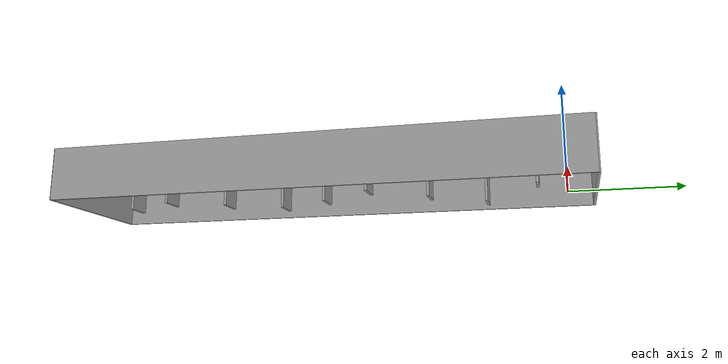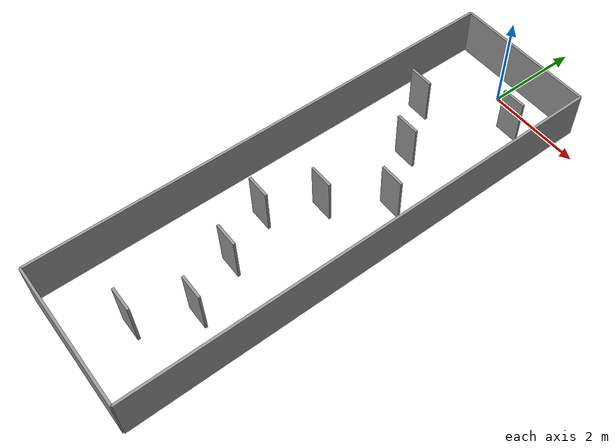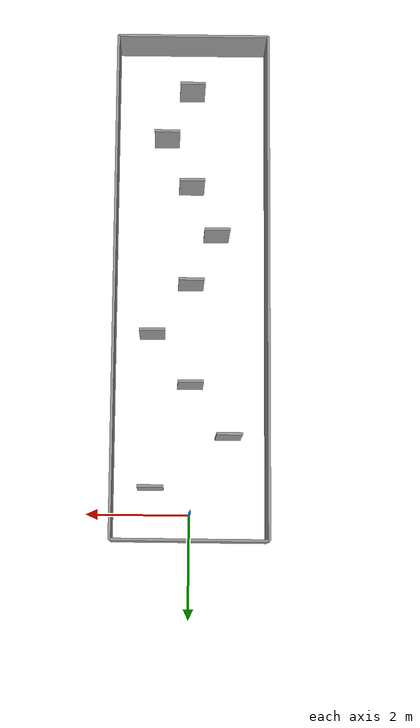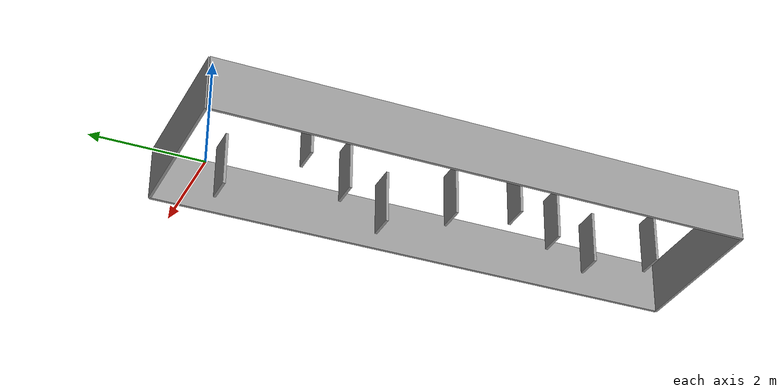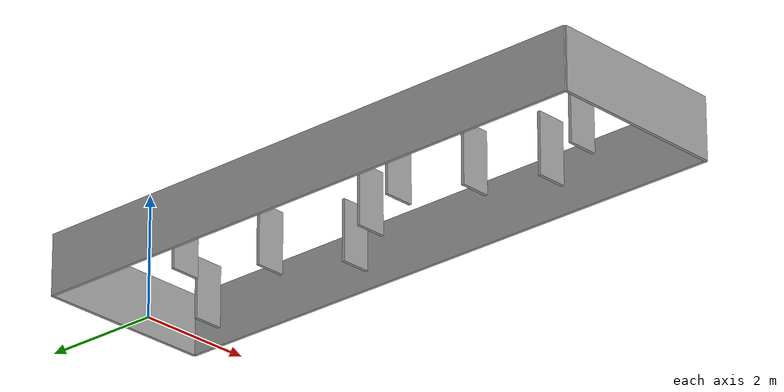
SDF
<?xml version='1.0'?>
<sdf version='1.5'>
  <model name='Circuit_ql_2'>
    <pose frame=''>0 0 0 0 0 0</pose>
    <link name='Wall_1'>
      <collision name='Wall_1_Collision'>
        <geometry>
          <box>
            <size>3 0.05 1</size>
          </box>
        </geometry>
        <pose frame=''>0 0 0.5 0 0 0</pose>
      </collision>
      <visual name='Wall_16_Visual'>
        <pose frame=''>0 0 0.5 0 0 0</pose>
        <geometry>
          <box>
            <size>3 0.05 1</size>
          </box>
        </geometry>
        <material>
          <script>
            <uri>file://media/materials/scripts/gazebo.material</uri>
            <name>Gazebo/Grey</name>
          </script>
          <ambient>1 1 1 1</ambient>
        </material>
      </visual>
      <pose frame=''>0 0.5 0 0 0 0</pose>
    </link>
    <link name='Wall_2'>
      <collision name='Wall_2_Collision'>
        <geometry>
          <box>
            <size>3 0.05 1</size>
          </box>
        </geometry>
        <pose frame=''>0 0 0.5 0 0 0</pose>
      </collision>
      <visual name='Wall_2_Visual'>
        <pose frame=''>0 0 0.5 0 0 0</pose>
        <geometry>
          <box>
            <size>3 0.05 1</size>
          </box>
        </geometry>
        <material>
          <script>
            <uri>file://media/materials/scripts/gazebo.material</uri>
            <name>Gazebo/Grey</name>
          </script>
          <ambient>1 1 1 1</ambient>
        </material>
      </visual>
      <pose frame=''>0 -9.5 0 0 0 0</pose>
    </link>
    <link name='Wall_3'>
      <collision name='Wall_3_Collision'>
        <geometry>
          <box>
            <size>10 0.05 1</size>
          </box>
        </geometry>
        <pose frame=''>0 0 0.5 0 0 0</pose>
      </collision>
      <visual name='Wall_3_Visual'>
        <pose frame=''>0 0 0.5 0 0 0</pose>
        <geometry>
          <box>
            <size>10 0.05 1</size>
          </box>
        </geometry>
        <material>
          <script>
            <uri>file://media/materials/scripts/gazebo.material</uri>
            <name>Gazebo/Grey</name>
          </script>
          <ambient>1 1 1 1</ambient>
        </material>
      </visual>
      <pose frame=''>1.5 -4.5 0 0 0 1.5708</pose>
    </link>
    <link name='Wall_4'>
      <collision name='Wall_4_Collision'>
        <geometry>
          <box>
            <size>10 0.05 1</size>
          </box>
        </geometry>
        <pose frame=''>0 0 0.5 0 0 0</pose>
      </collision>
      <visual name='Wall_4_Visual'>
        <pose frame=''>0 0 0.5 0 0 0</pose>
        <geometry>
          <box>
            <size>10 0.05 1</size>
          </box>
        </geometry>
        <material>
          <script>
            <uri>file://media/materials/scripts/gazebo.material</uri>
            <name>Gazebo/Grey</name>
          </script>
          <ambient>1 1 1 1</ambient>
        </material>
      </visual>
      <pose frame=''>-1.5 -4.5 0 0 0 1.5708</pose>
    </link>
    <link name='Wall_5_1'>
      <collision name='Wall_5_1_Collision'>
        <geometry>
          <box>
            <size>0.5 0.05 1</size>
          </box>
        </geometry>
        <pose frame=''>0 0 0.5 0 -0 0</pose>
      </collision>
      <visual name='Wall_5_1_Visual'>
        <pose frame=''>0 0 0.5 0 -0 0</pose>
        <geometry>
          <box>
            <size>0.5 0.05 1</size>
          </box>
        </geometry>
        <material>
          <script>
            <uri>file://media/materials/scripts/gazebo.material</uri>
            <name>Gazebo/Grey</name>
          </script>
          <ambient>1 1 1 1</ambient>
        </material>
      </visual>
      <pose frame=''>0.75 -0.5 0 0 0 0</pose>
    </link>
    <link name='Wall_5_2'>
      <collision name='Wall_5_2Collision'>
        <geometry>
          <box>
            <size>0.5 0.05 1</size>
          </box>
        </geometry>
        <pose frame=''>0 0 0.5 0 -0 0</pose>
      </collision>
      <visual name='Wall_5_2_Visual'>
        <pose frame=''>0 0 0.5 0 -0 0</pose>
        <geometry>
          <box>
            <size>0.5 0.05 1</size>
          </box>
        </geometry>
        <material>
          <script>
            <uri>file://media/materials/scripts/gazebo.material</uri>
            <name>Gazebo/Grey</name>
          </script>
          <ambient>1 1 1 1</ambient>
        </material>
      </visual>
      <pose frame=''>-0.75 -1.5 0 0 0 0</pose>
    </link>
    <link name='Wall_5_3'>
      <collision name='Wall_5_3_Collision'>
        <geometry>
          <box>
            <size>0.5 0.05 1</size>
          </box>
        </geometry>
        <pose frame=''>0 0 0.5 0 -0 0</pose>
      </collision>
      <visual name='Wall_5_3_Visual'>
        <pose frame=''>0 0 0.5 0 -0 0</pose>
        <geometry>
          <box>
            <size>0.5 0.05 1</size>
          </box>
        </geometry>
        <material>
          <script>
            <uri>file://media/materials/scripts/gazebo.material</uri>
            <name>Gazebo/Grey</name>
          </script>
          <ambient>1 1 1 1</ambient>
        </material>
      </visual>
      <pose frame=''>0 -2.5 0 0 0 0</pose>
    </link>
    <link name='Wall_5_4'>
      <collision name='Wall_5_4_Collision'>
        <geometry>
          <box>
            <size>0.5 0.05 1</size>
          </box>
        </geometry>
        <pose frame=''>0 0 0.5 0 -0 0</pose>
      </collision>
      <visual name='Wall_5_4Visual'>
        <pose frame=''>0 0 0.5 0 -0 0</pose>
        <geometry>
          <box>
            <size>0.5 0.05 1</size>
          </box>
        </geometry>
        <material>
          <script>
            <uri>file://media/materials/scripts/gazebo.material</uri>
            <name>Gazebo/Grey</name>
          </script>
          <ambient>1 1 1 1</ambient>
        </material>
      </visual>
      <pose frame=''>0.75 -3.5 0 0 0 0</pose>
    </link>
    <link name='Wall_5_5'>
      <collision name='Wall_5_5_Collision'>
        <geometry>
          <box>
            <size>0.5 0.05 1</size>
          </box>
        </geometry>
        <pose frame=''>0 0 0.5 0 -0 0</pose>
      </collision>
      <visual name='Wall_5_5_Visual'>
        <pose frame=''>0 0 0.5 0 -0 0</pose>
        <geometry>
          <box>
            <size>0.5 0.05 1</size>
          </box>
        </geometry>
        <material>
          <script>
            <uri>file://media/materials/scripts/gazebo.material</uri>
            <name>Gazebo/Grey</name>
          </script>
          <ambient>1 1 1 1</ambient>
        </material>
      </visual>
      <pose frame=''>0 -4.5 0 0 0 0</pose>
    </link>
    <link name='Wall_5_6'>
      <collision name='Wall_5_6Collision'>
        <geometry>
          <box>
            <size>0.5 0.05 1</size>
          </box>
        </geometry>
        <pose frame=''>0 0 0.5 0 -0 0</pose>
      </collision>
      <visual name='Wall_5_6_Visual'>
        <pose frame=''>0 0 0.5 0 -0 0</pose>
        <geometry>
          <box>
            <size>0.5 0.05 1</size>
          </box>
        </geometry>
        <material>
          <script>
            <uri>file://media/materials/scripts/gazebo.material</uri>
            <name>Gazebo/Grey</name>
          </script>
          <ambient>1 1 1 1</ambient>
        </material>
      </visual>
      <pose frame=''>-0.5 -5.5 0 0 0 0</pose>
    </link>
    <link name='Wall_5_7'>
      <collision name='Wall_5_7_Collision'>
        <geometry>
          <box>
            <size>0.5 0.05 1</size>
          </box>
        </geometry>
        <pose frame=''>0 0 0.5 0 -0 0</pose>
      </collision>
      <visual name='Wall_5_7_Visual'>
        <pose frame=''>0 0 0.5 0 -0 0</pose>
        <geometry>
          <box>
            <size>0.5 0.05 1</size>
          </box>
        </geometry>
        <material>
          <script>
            <uri>file://media/materials/scripts/gazebo.material</uri>
            <name>Gazebo/Grey</name>
          </script>
          <ambient>1 1 1 1</ambient>
        </material>
      </visual>
      <pose frame=''>0 -6.5 0 0 0 0</pose>
    </link>
    <link name='Wall_5_8'>
      <collision name='Wall_5_8_Collision'>
        <geometry>
          <box>
            <size>0.5 0.05 1</size>
          </box>
        </geometry>
        <pose frame=''>0 0 0.5 0 -0 0</pose>
      </collision>
      <visual name='Wall_5_8_Visual'>
        <pose frame=''>0 0 0.5 0 -0 0</pose>
        <geometry>
          <box>
            <size>0.5 0.05 1</size>
          </box>
        </geometry>
        <material>
          <script>
            <uri>file://media/materials/scripts/gazebo.material</uri>
            <name>Gazebo/Grey</name>
          </script>
          <ambient>1 1 1 1</ambient>
        </material>
      </visual>
      <pose frame=''>0.5 -7.5 0 0 0 0</pose>
    </link>
    <link name='Wall_5_9'>
      <collision name='Wall_5_9_Collision'>
        <geometry>
          <box>
            <size>0.5 0.05 1</size>
          </box>
        </geometry>
        <pose frame=''>0 0 0.5 0 -0 0</pose>
      </collision>
      <visual name='Wall_5_9_Visual'>
        <pose frame=''>0 0 0.5 0 -0 0</pose>
        <geometry>
          <box>
            <size>0.5 0.05 1</size>
          </box>
        </geometry>
        <material>
          <script>
            <uri>file://media/materials/scripts/gazebo.material</uri>
            <name>Gazebo/Grey</name>
          </script>
          <ambient>1 1 1 1</ambient>
        </material>
      </visual>
      <pose frame=''>0 -8.5 0 0 0 0</pose>
    </link>
    <static>1</static>
  </model>
</sdf>
